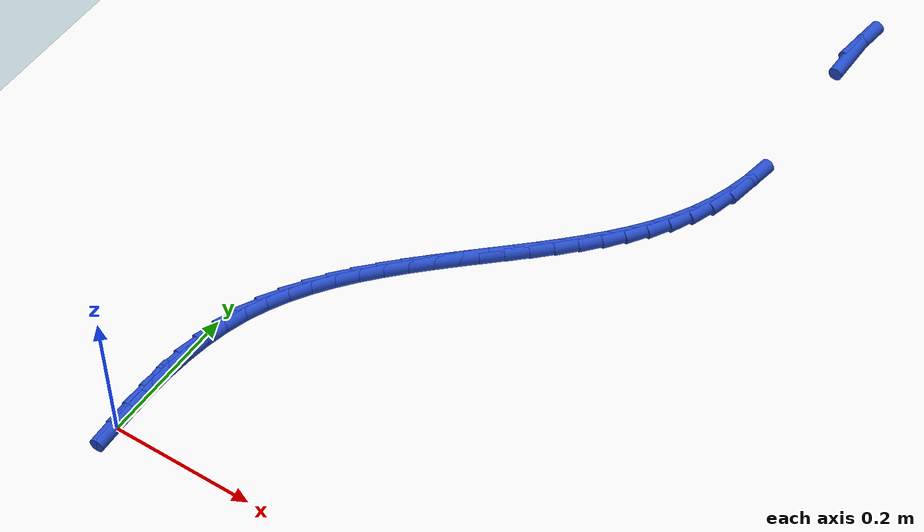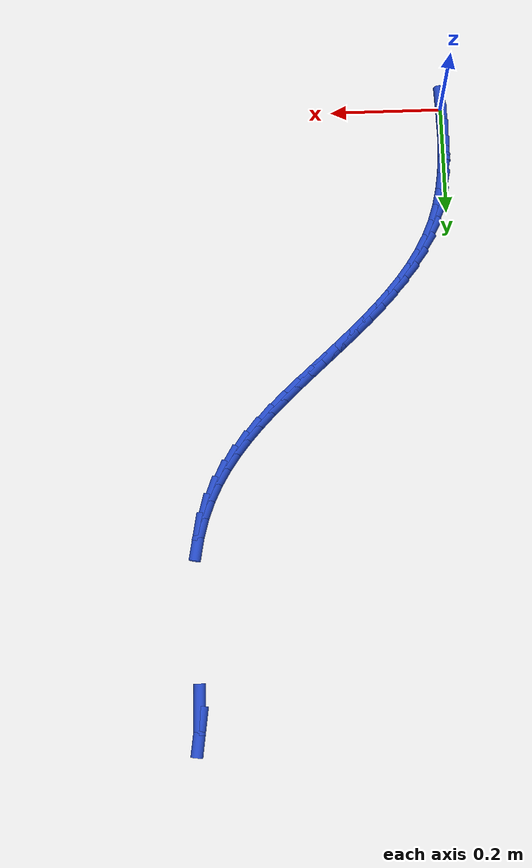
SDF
<sdf version="1.6">
 <world name="default">
  <model name="ground_plane">
   <static>1</static>
   <link name="link">
    <collision name="collision">
     <geometry><plane><normal>0 0 1</normal><size>100 100</size></plane></geometry>
     <surface><friction><ode><mu>100</mu><mu2>50</mu2></ode></friction></surface>
    </collision>
    <visual name="visual">
     <cast_shadows>0</cast_shadows>
     <geometry><plane><normal>0 0 1</normal><size>100 100</size></plane></geometry>
     <material>
      <script><uri>file://media/materials/scripts/gazebo.material</uri><name>Gazebo/WhiteGlow</name></script>
     </material>
    </visual>
   </link>
  </model>
  <model name="line">
   <link name="link_0">
    <pose>-5.204170427930421e-18 -6.938893903907228e-18 0.01 0 1.57 -1.5384629921607185</pose>
    <collision name="collision">
     <geometry><cylinder><radius>0.01</radius><length>0.08</length></cylinder></geometry>
    </collision>
    <visual name="visual">
     <material>
      <script><name>Gazebo/Blue</name><uri>file://media/materials/scripts/gazebo.material</uri></script>
     </material>
     <geometry><cylinder><radius>0.01</radius><length>0.08</length></cylinder></geometry>
    </visual>
   </link>
   <link name="link_1">
    <pose>-0.0010594706275543749 0.03275571195729387 0.01 0 1.57 1.5702468868258193</pose>
    <collision name="collision">
     <geometry><cylinder><radius>0.01</radius><length>0.08</length></cylinder></geometry>
    </collision>
    <visual name="visual">
     <material>
      <script><name>Gazebo/Blue</name><uri>file://media/materials/scripts/gazebo.material</uri></script>
     </material>
     <geometry><cylinder><radius>0.01</radius><length>0.08</length></cylinder></geometry>
    </visual>
   </link>
   <link name="link_2">
    <pose>-0.001041490961238285 0.0654793314948731 0.01 0 1.57 1.5287290648702447</pose>
    <collision name="collision">
     <geometry><cylinder><radius>0.01</radius><length>0.08</length></cylinder></geometry>
    </collision>
    <visual name="visual">
     <material>
      <script><name>Gazebo/Blue</name><uri>file://media/materials/scripts/gazebo.material</uri></script>
     </material>
     <geometry><cylinder><radius>0.01</radius><length>0.08</length></cylinder></geometry>
    </visual>
   </link>
   <link name="link_3">
    <pose>0.00032615970830442197 0.09797119703147854 0.01 0 1.57 1.4778181368854744</pose>
    <collision name="collision">
     <geometry><cylinder><radius>0.01</radius><length>0.08</length></cylinder></geometry>
    </collision>
    <visual name="visual">
     <material>
      <script><name>Gazebo/Blue</name><uri>file://media/materials/scripts/gazebo.material</uri></script>
     </material>
     <geometry><cylinder><radius>0.01</radius><length>0.08</length></cylinder></geometry>
    </visual>
   </link>
   <link name="link_4">
    <pose>0.003315702090429911 0.13003164698585087 0.01 0 1.57 1.4166440280009087</pose>
    <collision name="collision">
     <geometry><cylinder><radius>0.01</radius><length>0.08</length></cylinder></geometry>
    </collision>
    <visual name="visual">
     <material>
      <script><name>Gazebo/Blue</name><uri>file://media/materials/scripts/gazebo.material</uri></script>
     </material>
     <geometry><cylinder><radius>0.01</radius><length>0.08</length></cylinder></geometry>
    </visual>
   </link>
   <link name="link_5">
    <pose>0.008199356894494341 0.16146101977673097 0.01 0 1.57 1.3443461245852795</pose>
    <collision name="collision">
     <geometry><cylinder><radius>0.01</radius><length>0.08</length></cylinder></geometry>
    </collision>
    <visual name="visual">
     <material>
      <script><name>Gazebo/Blue</name><uri>file://media/materials/scripts/gazebo.material</uri></script>
     </material>
     <geometry><cylinder><radius>0.01</radius><length>0.08</length></cylinder></geometry>
    </visual>
   </link>
   <link name="link_6">
    <pose>0.015249344829853876 0.19205965382285953 0.01 0 1.57 1.2602742645034584</pose>
    <collision name="collision">
     <geometry><cylinder><radius>0.01</radius><length>0.08</length></cylinder></geometry>
    </collision>
    <visual name="visual">
     <material>
      <script><name>Gazebo/Blue</name><uri>file://media/materials/scripts/gazebo.material</uri></script>
     </material>
     <geometry><cylinder><radius>0.01</radius><length>0.08</length></cylinder></geometry>
    </visual>
   </link>
   <link name="link_7">
    <pose>0.02473788660586467 0.2216278875429774 0.01 0 1.57 1.167350690738257</pose>
    <collision name="collision">
     <geometry><cylinder><radius>0.01</radius><length>0.08</length></cylinder></geometry>
    </collision>
    <visual name="visual">
     <material>
      <script><name>Gazebo/Blue</name><uri>file://media/materials/scripts/gazebo.material</uri></script>
     </material>
     <geometry><cylinder><radius>0.01</radius><length>0.08</length></cylinder></geometry>
    </visual>
   </link>
   <link name="link_8">
    <pose>0.03685466071494644 0.2500136667881283 0.01 0 1.57 1.0798755891489737</pose>
    <collision name="collision">
     <geometry><cylinder><radius>0.01</radius><length>0.08</length></cylinder></geometry>
    </collision>
    <visual name="visual">
     <material>
      <script><name>Gazebo/Blue</name><uri>file://media/materials/scripts/gazebo.material</uri></script>
     </material>
     <geometry><cylinder><radius>0.01</radius><length>0.08</length></cylinder></geometry>
    </visual>
   </link>
   <link name="link_9">
    <pose>0.051427165031165525 0.277273830384486 0.01 0 1.57 1.0026386375845382</pose>
    <collision name="collision">
     <geometry><cylinder><radius>0.01</radius><length>0.08</length></cylinder></geometry>
    </collision>
    <visual name="visual">
     <material>
      <script><name>Gazebo/Blue</name><uri>file://media/materials/scripts/gazebo.material</uri></script>
     </material>
     <geometry><cylinder><radius>0.01</radius><length>0.08</length></cylinder></geometry>
    </visual>
   </link>
   <link name="link_10">
    <pose>0.06818358833755174 0.3035224951306856 0.01 0 1.57 0.9360602095984024</pose>
    <collision name="collision">
     <geometry><cylinder><radius>0.01</radius><length>0.08</length></cylinder></geometry>
    </collision>
    <visual name="visual">
     <material>
      <script><name>Gazebo/Blue</name><uri>file://media/materials/scripts/gazebo.material</uri></script>
     </material>
     <geometry><cylinder><radius>0.01</radius><length>0.08</length></cylinder></geometry>
    </visual>
   </link>
   <link name="link_11">
    <pose>0.08685211676029808 0.32887377935773193 0.01 0 1.57 0.8800234178745512</pose>
    <collision name="collision">
     <geometry><cylinder><radius>0.01</radius><length>0.08</length></cylinder></geometry>
    </collision>
    <visual name="visual">
     <material>
      <script><name>Gazebo/Blue</name><uri>file://media/materials/scripts/gazebo.material</uri></script>
     </material>
     <geometry><cylinder><radius>0.01</radius><length>0.08</length></cylinder></geometry>
    </visual>
   </link>
   <link name="link_12">
    <pose>0.10716093642559762 0.3534418013966299 0.01 0 1.57 0.8341039650630805</pose>
    <collision name="collision">
     <geometry><cylinder><radius>0.01</radius><length>0.08</length></cylinder></geometry>
    </collision>
    <visual name="visual">
     <material>
      <script><name>Gazebo/Blue</name><uri>file://media/materials/scripts/gazebo.material</uri></script>
     </material>
     <geometry><cylinder><radius>0.01</radius><length>0.08</length></cylinder></geometry>
    </visual>
   </link>
   <link name="link_13">
    <pose>0.12883823345964324 0.37734067957838385 0.01 0 1.57 0.7977548447280498</pose>
    <collision name="collision">
     <geometry><cylinder><radius>0.01</radius><length>0.08</length></cylinder></geometry>
    </collision>
    <visual name="visual">
     <material>
      <script><name>Gazebo/Blue</name><uri>file://media/materials/scripts/gazebo.material</uri></script>
     </material>
     <geometry><cylinder><radius>0.01</radius><length>0.08</length></cylinder></geometry>
    </visual>
   </link>
   <link name="link_14">
    <pose>0.15161219398862796 0.4006845322339988 0.01 0 1.57 0.770435013168334</pose>
    <collision name="collision">
     <geometry><cylinder><radius>0.01</radius><length>0.08</length></cylinder></geometry>
    </collision>
    <visual name="visual">
     <material>
      <script><name>Gazebo/Blue</name><uri>file://media/materials/scripts/gazebo.material</uri></script>
     </material>
     <geometry><cylinder><radius>0.01</radius><length>0.08</length></cylinder></geometry>
    </visual>
   </link>
   <link name="link_15">
    <pose>0.1752110041387448 0.42358747769447935 0.01 0 1.57 0.7516904848797682</pose>
    <collision name="collision">
     <geometry><cylinder><radius>0.01</radius><length>0.08</length></cylinder></geometry>
    </collision>
    <visual name="visual">
     <material>
      <script><name>Gazebo/Blue</name><uri>file://media/materials/scripts/gazebo.material</uri></script>
     </material>
     <geometry><cylinder><radius>0.01</radius><length>0.08</length></cylinder></geometry>
    </visual>
   </link>
   <link name="link_16">
    <pose>0.19936285003618673 0.4461636342908303 0.01 0 1.57 0.7412018743576283</pose>
    <collision name="collision">
     <geometry><cylinder><radius>0.01</radius><length>0.08</length></cylinder></geometry>
    </collision>
    <visual name="visual">
     <material>
      <script><name>Gazebo/Blue</name><uri>file://media/materials/scripts/gazebo.material</uri></script>
     </material>
     <geometry><cylinder><radius>0.01</radius><length>0.08</length></cylinder></geometry>
    </visual>
   </link>
   <link name="link_17">
    <pose>0.2237959178071468 0.4685271203540563 0.01 0 1.57 0.7388109870767603</pose>
    <collision name="collision">
     <geometry><cylinder><radius>0.01</radius><length>0.08</length></cylinder></geometry>
    </collision>
    <visual name="visual">
     <material>
      <script><name>Gazebo/Blue</name><uri>file://media/materials/scripts/gazebo.material</uri></script>
     </material>
     <geometry><cylinder><radius>0.01</radius><length>0.08</length></cylinder></geometry>
    </visual>
   </link>
   <link name="link_18">
    <pose>0.2482383935778179 0.4907920542151622 0.01 0 1.57 0.7445352874370562</pose>
    <collision name="collision">
     <geometry><cylinder><radius>0.01</radius><length>0.08</length></cylinder></geometry>
    </collision>
    <visual name="visual">
     <material>
      <script><name>Gazebo/Blue</name><uri>file://media/materials/scripts/gazebo.material</uri></script>
     </material>
     <geometry><cylinder><radius>0.01</radius><length>0.08</length></cylinder></geometry>
    </visual>
   </link>
   <link name="link_19">
    <pose>0.27241846347439314 0.5130725542051526 0.01 0 1.57 0.7585749827108167</pose>
    <collision name="collision">
     <geometry><cylinder><radius>0.01</radius><length>0.08</length></cylinder></geometry>
    </collision>
    <visual name="visual">
     <material>
      <script><name>Gazebo/Blue</name><uri>file://media/materials/scripts/gazebo.material</uri></script>
     </material>
     <geometry><cylinder><radius>0.01</radius><length>0.08</length></cylinder></geometry>
    </visual>
   </link>
   <link name="link_20">
    <pose>0.29606431362306557 0.5354827386550325 0.01 0 1.57 0.781313469718438</pose>
    <collision name="collision">
     <geometry><cylinder><radius>0.01</radius><length>0.08</length></cylinder></geometry>
    </collision>
    <visual name="visual">
     <material>
      <script><name>Gazebo/Blue</name><uri>file://media/materials/scripts/gazebo.material</uri></script>
     </material>
     <geometry><cylinder><radius>0.01</radius><length>0.08</length></cylinder></geometry>
    </visual>
   </link>
   <link name="link_21">
    <pose>0.3189041301500279 0.5581367258958061 0.01 0 1.57 0.8133076241221955</pose>
    <collision name="collision">
     <geometry><cylinder><radius>0.01</radius><length>0.08</length></cylinder></geometry>
    </collision>
    <visual name="visual">
     <material>
      <script><name>Gazebo/Blue</name><uri>file://media/materials/scripts/gazebo.material</uri></script>
     </material>
     <geometry><cylinder><radius>0.01</radius><length>0.08</length></cylinder></geometry>
    </visual>
   </link>
   <link name="link_22">
    <pose>0.34066609918147345 0.5811486342584786 0.01 0 1.57 0.8552592795555024</pose>
    <collision name="collision">
     <geometry><cylinder><radius>0.01</radius><length>0.08</length></cylinder></geometry>
    </collision>
    <visual name="visual">
     <material>
      <script><name>Gazebo/Blue</name><uri>file://media/materials/scripts/gazebo.material</uri></script>
     </material>
     <geometry><cylinder><radius>0.01</radius><length>0.08</length></cylinder></geometry>
    </visual>
   </link>
   <link name="link_23">
    <pose>0.36107840684359505 0.6046325820740548 0.01 0 1.57 0.9080407438181826</pose>
    <collision name="collision">
     <geometry><cylinder><radius>0.01</radius><length>0.08</length></cylinder></geometry>
    </collision>
    <visual name="visual">
     <material>
      <script><name>Gazebo/Blue</name><uri>file://media/materials/scripts/gazebo.material</uri></script>
     </material>
     <geometry><cylinder><radius>0.01</radius><length>0.08</length></cylinder></geometry>
    </visual>
   </link>
   <link name="link_24">
    <pose>0.3798797425106135 0.6287204984050254 0.01 0 1.57 0.9726077621093715</pose>
    <collision name="collision">
     <geometry><cylinder><radius>0.01</radius><length>0.08</length></cylinder></geometry>
    </collision>
    <visual name="visual">
     <material>
      <script><name>Gazebo/Blue</name><uri>file://media/materials/scripts/gazebo.material</uri></script>
     </material>
     <geometry><cylinder><radius>0.01</radius><length>0.08</length></cylinder></geometry>
    </visual>
   </link>
   <link name="link_25">
    <pose>0.39688655146858387 0.653676165780874 0.01 0 1.57 1.0481157510346502</pose>
    <collision name="collision">
     <geometry><cylinder><radius>0.01</radius><length>0.08</length></cylinder></geometry>
    </collision>
    <visual name="visual">
     <material>
      <script><name>Gazebo/Blue</name><uri>file://media/materials/scripts/gazebo.material</uri></script>
     </material>
     <geometry><cylinder><radius>0.01</radius><length>0.08</length></cylinder></geometry>
    </visual>
   </link>
   <link name="link_26">
    <pose>0.4119501805029849 0.6798225504457849 0.01 0 1.57 1.132276816492037</pose>
    <collision name="collision">
     <geometry><cylinder><radius>0.01</radius><length>0.08</length></cylinder></geometry>
    </collision>
    <visual name="visual">
     <material>
      <script><name>Gazebo/Blue</name><uri>file://media/materials/scripts/gazebo.material</uri></script>
     </material>
     <geometry><cylinder><radius>0.01</radius><length>0.08</length></cylinder></geometry>
    </visual>
   </link>
   <link name="link_27">
    <pose>0.42492214212641344 0.7074828996733143 0.01 0 1.57 1.2218630214811355</pose>
    <collision name="collision">
     <geometry><cylinder><radius>0.01</radius><length>0.08</length></cylinder></geometry>
    </collision>
    <visual name="visual">
     <material>
      <script><name>Gazebo/Blue</name><uri>file://media/materials/scripts/gazebo.material</uri></script>
     </material>
     <geometry><cylinder><radius>0.01</radius><length>0.08</length></cylinder></geometry>
    </visual>
   </link>
   <link name="link_28">
    <pose>0.4356539488514664 0.7369804607370186 0.01 0 1.57 1.3131150013466104</pose>
    <collision name="collision">
     <geometry><cylinder><radius>0.01</radius><length>0.08</length></cylinder></geometry>
    </collision>
    <visual name="visual">
     <material>
      <script><name>Gazebo/Blue</name><uri>file://media/materials/scripts/gazebo.material</uri></script>
     </material>
     <geometry><cylinder><radius>0.01</radius><length>0.08</length></cylinder></geometry>
    </visual>
   </link>
   <link name="link_29">
    <pose>0.4439971131907408 0.7686384809104544 0.01 0 1.57 1.402350917145807</pose>
    <collision name="collision">
     <geometry><cylinder><radius>0.01</radius><length>0.08</length></cylinder></geometry>
    </collision>
    <visual name="visual">
     <material>
      <script><name>Gazebo/Blue</name><uri>file://media/materials/scripts/gazebo.material</uri></script>
     </material>
     <geometry><cylinder><radius>0.01</radius><length>0.08</length></cylinder></geometry>
    </visual>
   </link>
   <link name="link_36">
    <pose>0.44358439778384273 1.0452081032660305 0.01 0 1.57 1.563623255502099</pose>
    <collision name="collision">
     <geometry><cylinder><radius>0.01</radius><length>0.08</length></cylinder></geometry>
    </collision>
    <visual name="visual">
     <material>
      <script><name>Gazebo/Blue</name><uri>file://media/materials/scripts/gazebo.material</uri></script>
     </material>
     <geometry><cylinder><radius>0.01</radius><length>0.08</length></cylinder></geometry>
    </visual>
   </link>
   <link name="link_37">
    <pose>0.4438322213740182 1.0797566710449802 0.01 0 1.57 1.4491045600259156</pose>
    <collision name="collision">
     <geometry><cylinder><radius>0.01</radius><length>0.08</length></cylinder></geometry>
    </collision>
    <visual name="visual">
     <material>
      <script><name>Gazebo/Blue</name><uri>file://media/materials/scripts/gazebo.material</uri></script>
     </material>
     <geometry><cylinder><radius>0.01</radius><length>0.08</length></cylinder></geometry>
    </visual>
   </link>
   <link name="link_280">
    <pose>1.3335686721571705e-17 -1.8041124150158794e-16 0.01 0 1.57 -1.5375798852535592</pose>
    <collision name="collision">
     <geometry><cylinder><radius>0.01</radius><length>0.08</length></cylinder></geometry>
    </collision>
    <visual name="visual">
     <material>
      <script><name>Gazebo/Blue</name><uri>file://media/materials/scripts/gazebo.material</uri></script>
     </material>
     <geometry><cylinder><radius>0.01</radius><length>0.08</length></cylinder></geometry>
    </visual>
   </link>
   <link name="link_281">
    <pose>-0.0010892204749907955 0.03277954544196027 0.01 0 1.57 -1.565011452445074</pose>
    <collision name="collision">
     <geometry><cylinder><radius>0.01</radius><length>0.08</length></cylinder></geometry>
    </collision>
    <visual name="visual">
     <material>
      <script><name>Gazebo/Blue</name><uri>file://media/materials/scripts/gazebo.material</uri></script>
     </material>
     <geometry><cylinder><radius>0.01</radius><length>0.08</length></cylinder></geometry>
    </visual>
   </link>
   <link name="link_282">
    <pose>-0.0012794897407297843 0.06566999937220626 0.01 0 1.57 -1.55131516512696</pose>
    <collision name="collision">
     <geometry><cylinder><radius>0.01</radius><length>0.08</length></cylinder></geometry>
    </collision>
    <visual name="visual">
     <material>
      <script><name>Gazebo/Blue</name><uri>file://media/materials/scripts/gazebo.material</uri></script>
     </material>
     <geometry><cylinder><radius>0.01</radius><length>0.08</length></cylinder></geometry>
    </visual>
   </link>
  </model>
 </world>
</sdf>
